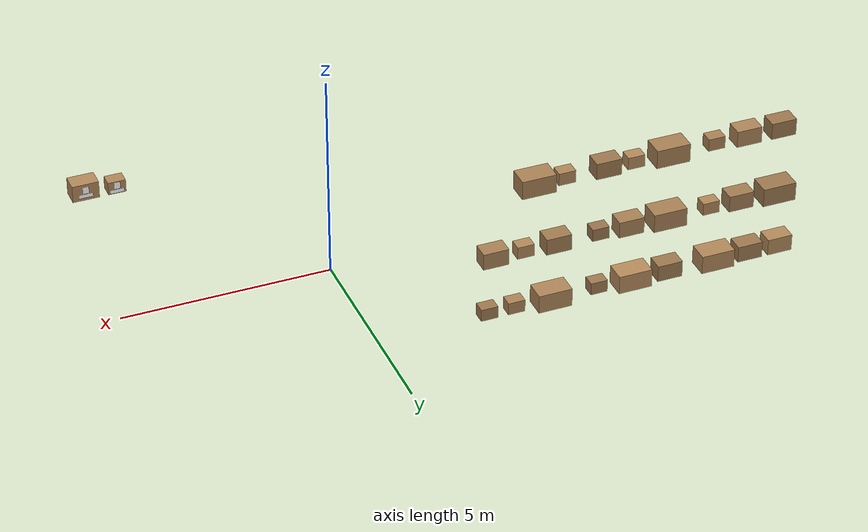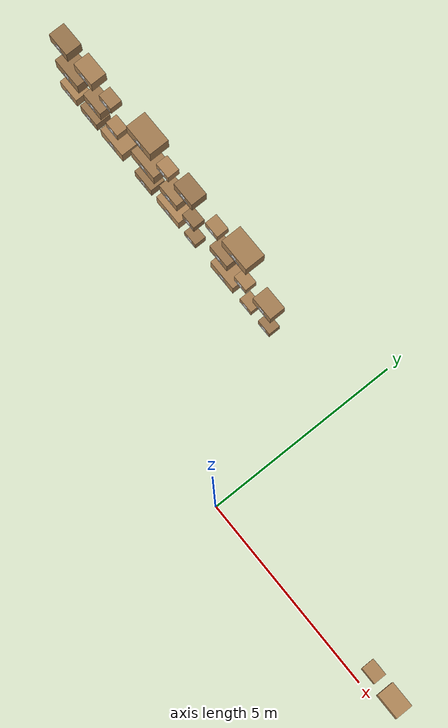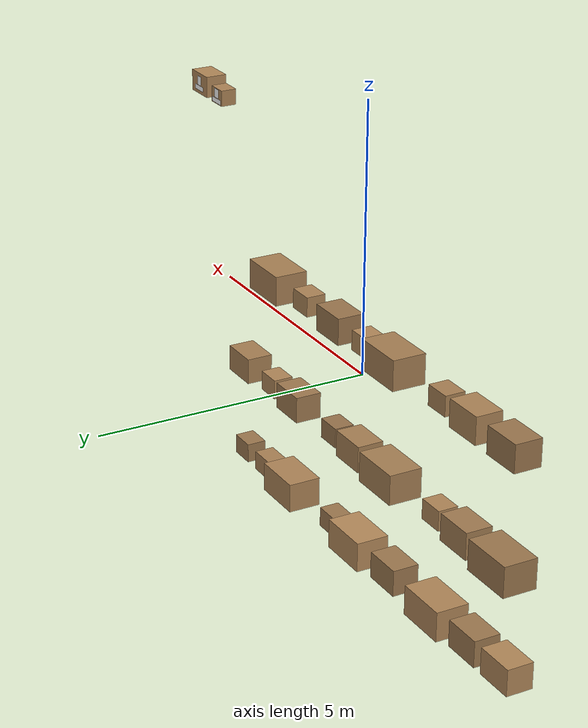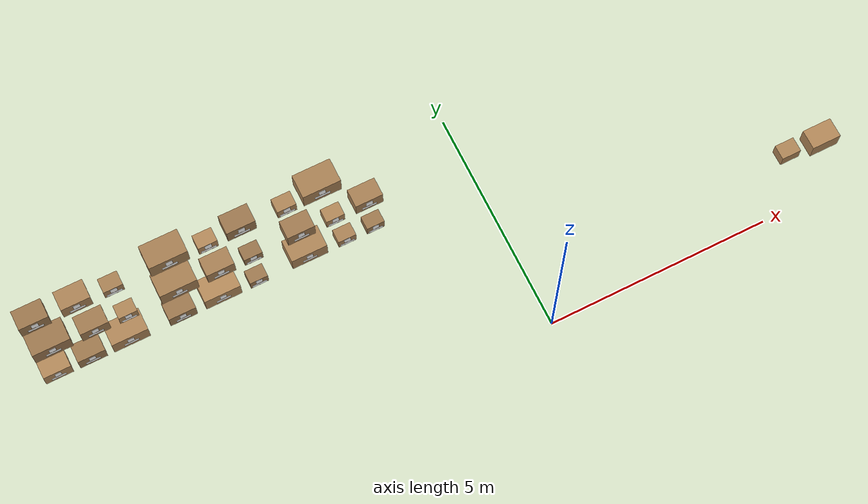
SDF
<sdf version="1.9">
 <world name="warehouse">
  <model name="inventory">
   <static>true</static>
   <link name="box_C_06_3_1">
    <visual name="body">
     <pose>4.95 0.13 3.7 0 0 0</pose>
     <geometry><box><size>0.4 0.3 0.3</size></box></geometry>
     <material>
      <ambient>0.342983 0.262281 0.171492 1</ambient>
      <diffuse>0.685967 0.524563 0.342983 1</diffuse>
      <specular>0.05 0.05 0.05 1</specular>
      <pbr><metal><metalness>0.0</metalness><roughness>0.9</roughness></metal></pbr>
     </material>
    </visual>
    <collision name="body_c">
     <pose>4.95 0.13 3.7 0 0 0</pose>
     <geometry><box><size>0.4 0.3 0.3</size></box></geometry>
    </collision>
    <visual name="label">
     <pose>4.95 0.284 3.75 1.5708 0 3.14159</pose>
     <geometry>
      <mesh><uri>model://warehouse_assets/meshes/label_quad.obj</uri><scale>0.14 0.17 1</scale></mesh>
     </geometry>
     <material>
      <ambient>1 1 1 1</ambient>
      <diffuse>1 1 1 1</diffuse>
      <specular>0 0 0 1</specular>
      <pbr>
       <metal>
        <albedo_map>model://warehouse_assets/materials/textures/box_C0631.png</albedo_map>
        <metalness>0.0</metalness>
        <roughness>1.0</roughness>
       </metal>
      </pbr>
     </material>
    </visual>
    <visual name="placard">
     <pose>4.95 0.284 3.61 1.5708 0 3.14159</pose>
     <geometry>
      <mesh><uri>model://warehouse_assets/meshes/label_quad.obj</uri><scale>0.32 0.09 1</scale></mesh>
     </geometry>
     <material>
      <ambient>1 1 1 1</ambient>
      <diffuse>1 1 1 1</diffuse>
      <specular>0 0 0 1</specular>
      <pbr>
       <metal>
        <albedo_map>model://warehouse_assets/materials/textures/placard_C0631.png</albedo_map>
        <metalness>0.0</metalness>
        <roughness>1.0</roughness>
       </metal>
      </pbr>
     </material>
    </visual>
   </link>
   <link name="box_C_06_3_2">
    <visual name="body">
     <pose>5.65 0.08 3.75 0 0 0</pose>
     <geometry><box><size>0.6 0.4 0.4</size></box></geometry>
     <material>
      <ambient>0.35077 0.268236 0.175385 1</ambient>
      <diffuse>0.701541 0.536472 0.35077 1</diffuse>
      <specular>0.05 0.05 0.05 1</specular>
      <pbr><metal><metalness>0.0</metalness><roughness>0.9</roughness></metal></pbr>
     </material>
    </visual>
    <collision name="body_c">
     <pose>5.65 0.08 3.75 0 0 0</pose>
     <geometry><box><size>0.6 0.4 0.4</size></box></geometry>
    </collision>
    <visual name="label">
     <pose>5.65 0.284 3.8 1.5708 0 3.14159</pose>
     <geometry>
      <mesh><uri>model://warehouse_assets/meshes/label_quad.obj</uri><scale>0.14 0.17 1</scale></mesh>
     </geometry>
     <material>
      <ambient>1 1 1 1</ambient>
      <diffuse>1 1 1 1</diffuse>
      <specular>0 0 0 1</specular>
      <pbr>
       <metal>
        <albedo_map>model://warehouse_assets/materials/textures/box_C0632.png</albedo_map>
        <metalness>0.0</metalness>
        <roughness>1.0</roughness>
       </metal>
      </pbr>
     </material>
    </visual>
    <visual name="placard">
     <pose>5.65 0.284 3.66 1.5708 0 3.14159</pose>
     <geometry>
      <mesh><uri>model://warehouse_assets/meshes/label_quad.obj</uri><scale>0.32 0.09 1</scale></mesh>
     </geometry>
     <material>
      <ambient>1 1 1 1</ambient>
      <diffuse>1 1 1 1</diffuse>
      <specular>0 0 0 1</specular>
      <pbr>
       <metal>
        <albedo_map>model://warehouse_assets/materials/textures/placard_C0632.png</albedo_map>
        <metalness>0.0</metalness>
        <roughness>1.0</roughness>
       </metal>
      </pbr>
     </material>
    </visual>
   </link>
   <link name="box_D_01_1_0">
    <visual name="body">
     <pose>-9.5 3.52 0.6 0 0 0</pose>
     <geometry><box><size>0.6 0.4 0.4</size></box></geometry>
     <material>
      <ambient>0.351907 0.269105 0.175953 1</ambient>
      <diffuse>0.703814 0.538211 0.351907 1</diffuse>
      <specular>0.05 0.05 0.05 1</specular>
      <pbr><metal><metalness>0.0</metalness><roughness>0.9</roughness></metal></pbr>
     </material>
    </visual>
    <collision name="body_c">
     <pose>-9.5 3.52 0.6 0 0 0</pose>
     <geometry><box><size>0.6 0.4 0.4</size></box></geometry>
    </collision>
    <visual name="label">
     <pose>-9.5 3.316 0.65 1.5708 0 0</pose>
     <geometry>
      <mesh><uri>model://warehouse_assets/meshes/label_quad.obj</uri><scale>0.14 0.17 1</scale></mesh>
     </geometry>
     <material>
      <ambient>1 1 1 1</ambient>
      <diffuse>1 1 1 1</diffuse>
      <specular>0 0 0 1</specular>
      <pbr>
       <metal>
        <albedo_map>model://warehouse_assets/materials/textures/box_D0110.png</albedo_map>
        <metalness>0.0</metalness>
        <roughness>1.0</roughness>
       </metal>
      </pbr>
     </material>
    </visual>
    <visual name="placard">
     <pose>-9.5 3.316 0.51 1.5708 0 0</pose>
     <geometry>
      <mesh><uri>model://warehouse_assets/meshes/label_quad.obj</uri><scale>0.32 0.09 1</scale></mesh>
     </geometry>
     <material>
      <ambient>1 1 1 1</ambient>
      <diffuse>1 1 1 1</diffuse>
      <specular>0 0 0 1</specular>
      <pbr>
       <metal>
        <albedo_map>model://warehouse_assets/materials/textures/placard_D0110.png</albedo_map>
        <metalness>0.0</metalness>
        <roughness>1.0</roughness>
       </metal>
      </pbr>
     </material>
    </visual>
   </link>
   <link name="box_D_01_1_1">
    <visual name="body">
     <pose>-8.75 3.52 0.6 0 0 0</pose>
     <geometry><box><size>0.6 0.4 0.4</size></box></geometry>
     <material>
      <ambient>0.309917 0.236995 0.154959 1</ambient>
      <diffuse>0.619834 0.473991 0.309917 1</diffuse>
      <specular>0.05 0.05 0.05 1</specular>
      <pbr><metal><metalness>0.0</metalness><roughness>0.9</roughness></metal></pbr>
     </material>
    </visual>
    <collision name="body_c">
     <pose>-8.75 3.52 0.6 0 0 0</pose>
     <geometry><box><size>0.6 0.4 0.4</size></box></geometry>
    </collision>
    <visual name="label">
     <pose>-8.75 3.316 0.65 1.5708 0 0</pose>
     <geometry>
      <mesh><uri>model://warehouse_assets/meshes/label_quad.obj</uri><scale>0.14 0.17 1</scale></mesh>
     </geometry>
     <material>
      <ambient>1 1 1 1</ambient>
      <diffuse>1 1 1 1</diffuse>
      <specular>0 0 0 1</specular>
      <pbr>
       <metal>
        <albedo_map>model://warehouse_assets/materials/textures/box_D0111.png</albedo_map>
        <metalness>0.0</metalness>
        <roughness>1.0</roughness>
       </metal>
      </pbr>
     </material>
    </visual>
    <visual name="placard">
     <pose>-8.75 3.316 0.51 1.5708 0 0</pose>
     <geometry>
      <mesh><uri>model://warehouse_assets/meshes/label_quad.obj</uri><scale>0.32 0.09 1</scale></mesh>
     </geometry>
     <material>
      <ambient>1 1 1 1</ambient>
      <diffuse>1 1 1 1</diffuse>
      <specular>0 0 0 1</specular>
      <pbr>
       <metal>
        <albedo_map>model://warehouse_assets/materials/textures/placard_D0111.png</albedo_map>
        <metalness>0.0</metalness>
        <roughness>1.0</roughness>
       </metal>
      </pbr>
     </material>
    </visual>
   </link>
   <link name="box_D_01_1_2">
    <visual name="body">
     <pose>-7.9 3.57 0.625 0 0 0</pose>
     <geometry><box><size>0.8 0.5 0.45</size></box></geometry>
     <material>
      <ambient>0.346962 0.265324 0.173481 1</ambient>
      <diffuse>0.693923 0.530647 0.346962 1</diffuse>
      <specular>0.05 0.05 0.05 1</specular>
      <pbr><metal><metalness>0.0</metalness><roughness>0.9</roughness></metal></pbr>
     </material>
    </visual>
    <collision name="body_c">
     <pose>-7.9 3.57 0.625 0 0 0</pose>
     <geometry><box><size>0.8 0.5 0.45</size></box></geometry>
    </collision>
    <visual name="label">
     <pose>-7.9 3.316 0.675 1.5708 0 0</pose>
     <geometry>
      <mesh><uri>model://warehouse_assets/meshes/label_quad.obj</uri><scale>0.14 0.17 1</scale></mesh>
     </geometry>
     <material>
      <ambient>1 1 1 1</ambient>
      <diffuse>1 1 1 1</diffuse>
      <specular>0 0 0 1</specular>
      <pbr>
       <metal>
        <albedo_map>model://warehouse_assets/materials/textures/box_D0112.png</albedo_map>
        <metalness>0.0</metalness>
        <roughness>1.0</roughness>
       </metal>
      </pbr>
     </material>
    </visual>
    <visual name="placard">
     <pose>-7.9 3.316 0.535 1.5708 0 0</pose>
     <geometry>
      <mesh><uri>model://warehouse_assets/meshes/label_quad.obj</uri><scale>0.32 0.09 1</scale></mesh>
     </geometry>
     <material>
      <ambient>1 1 1 1</ambient>
      <diffuse>1 1 1 1</diffuse>
      <specular>0 0 0 1</specular>
      <pbr>
       <metal>
        <albedo_map>model://warehouse_assets/materials/textures/placard_D0112.png</albedo_map>
        <metalness>0.0</metalness>
        <roughness>1.0</roughness>
       </metal>
      </pbr>
     </material>
    </visual>
   </link>
   <link name="box_D_01_2_0">
    <visual name="body">
     <pose>-9.35 3.57 2.075 0 0 0</pose>
     <geometry><box><size>0.8 0.5 0.45</size></box></geometry>
     <material>
      <ambient>0.307798 0.235375 0.153899 1</ambient>
      <diffuse>0.615597 0.470751 0.307798 1</diffuse>
      <specular>0.05 0.05 0.05 1</specular>
      <pbr><metal><metalness>0.0</metalness><roughness>0.9</roughness></metal></pbr>
     </material>
    </visual>
    <collision name="body_c">
     <pose>-9.35 3.57 2.075 0 0 0</pose>
     <geometry><box><size>0.8 0.5 0.45</size></box></geometry>
    </collision>
    <visual name="label">
     <pose>-9.35 3.316 2.125 1.5708 0 0</pose>
     <geometry>
      <mesh><uri>model://warehouse_assets/meshes/label_quad.obj</uri><scale>0.14 0.17 1</scale></mesh>
     </geometry>
     <material>
      <ambient>1 1 1 1</ambient>
      <diffuse>1 1 1 1</diffuse>
      <specular>0 0 0 1</specular>
      <pbr>
       <metal>
        <albedo_map>model://warehouse_assets/materials/textures/box_D0120.png</albedo_map>
        <metalness>0.0</metalness>
        <roughness>1.0</roughness>
       </metal>
      </pbr>
     </material>
    </visual>
    <visual name="placard">
     <pose>-9.35 3.316 1.985 1.5708 0 0</pose>
     <geometry>
      <mesh><uri>model://warehouse_assets/meshes/label_quad.obj</uri><scale>0.32 0.09 1</scale></mesh>
     </geometry>
     <material>
      <ambient>1 1 1 1</ambient>
      <diffuse>1 1 1 1</diffuse>
      <specular>0 0 0 1</specular>
      <pbr>
       <metal>
        <albedo_map>model://warehouse_assets/materials/textures/placard_D0120.png</albedo_map>
        <metalness>0.0</metalness>
        <roughness>1.0</roughness>
       </metal>
      </pbr>
     </material>
    </visual>
   </link>
   <link name="box_D_01_2_1">
    <visual name="body">
     <pose>-8.45 3.52 2.05 0 0 0</pose>
     <geometry><box><size>0.6 0.4 0.4</size></box></geometry>
     <material>
      <ambient>0.318267 0.24338 0.159133 1</ambient>
      <diffuse>0.636533 0.486761 0.318267 1</diffuse>
      <specular>0.05 0.05 0.05 1</specular>
      <pbr><metal><metalness>0.0</metalness><roughness>0.9</roughness></metal></pbr>
     </material>
    </visual>
    <collision name="body_c">
     <pose>-8.45 3.52 2.05 0 0 0</pose>
     <geometry><box><size>0.6 0.4 0.4</size></box></geometry>
    </collision>
    <visual name="label">
     <pose>-8.45 3.316 2.1 1.5708 0 0</pose>
     <geometry>
      <mesh><uri>model://warehouse_assets/meshes/label_quad.obj</uri><scale>0.14 0.17 1</scale></mesh>
     </geometry>
     <material>
      <ambient>1 1 1 1</ambient>
      <diffuse>1 1 1 1</diffuse>
      <specular>0 0 0 1</specular>
      <pbr>
       <metal>
        <albedo_map>model://warehouse_assets/materials/textures/box_D0121.png</albedo_map>
        <metalness>0.0</metalness>
        <roughness>1.0</roughness>
       </metal>
      </pbr>
     </material>
    </visual>
    <visual name="placard">
     <pose>-8.45 3.316 1.96 1.5708 0 0</pose>
     <geometry>
      <mesh><uri>model://warehouse_assets/meshes/label_quad.obj</uri><scale>0.32 0.09 1</scale></mesh>
     </geometry>
     <material>
      <ambient>1 1 1 1</ambient>
      <diffuse>1 1 1 1</diffuse>
      <specular>0 0 0 1</specular>
      <pbr>
       <metal>
        <albedo_map>model://warehouse_assets/materials/textures/placard_D0121.png</albedo_map>
        <metalness>0.0</metalness>
        <roughness>1.0</roughness>
       </metal>
      </pbr>
     </material>
    </visual>
   </link>
   <link name="box_D_01_2_2">
    <visual name="body">
     <pose>-7.75 3.47 2 0 0 0</pose>
     <geometry><box><size>0.4 0.3 0.3</size></box></geometry>
     <material>
      <ambient>0.345606 0.264287 0.172803 1</ambient>
      <diffuse>0.691212 0.528574 0.345606 1</diffuse>
      <specular>0.05 0.05 0.05 1</specular>
      <pbr><metal><metalness>0.0</metalness><roughness>0.9</roughness></metal></pbr>
     </material>
    </visual>
    <collision name="body_c">
     <pose>-7.75 3.47 2 0 0 0</pose>
     <geometry><box><size>0.4 0.3 0.3</size></box></geometry>
    </collision>
    <visual name="label">
     <pose>-7.75 3.316 2.05 1.5708 0 0</pose>
     <geometry>
      <mesh><uri>model://warehouse_assets/meshes/label_quad.obj</uri><scale>0.14 0.17 1</scale></mesh>
     </geometry>
     <material>
      <ambient>1 1 1 1</ambient>
      <diffuse>1 1 1 1</diffuse>
      <specular>0 0 0 1</specular>
      <pbr>
       <metal>
        <albedo_map>model://warehouse_assets/materials/textures/box_D0122.png</albedo_map>
        <metalness>0.0</metalness>
        <roughness>1.0</roughness>
       </metal>
      </pbr>
     </material>
    </visual>
    <visual name="placard">
     <pose>-7.75 3.316 1.91 1.5708 0 0</pose>
     <geometry>
      <mesh><uri>model://warehouse_assets/meshes/label_quad.obj</uri><scale>0.32 0.09 1</scale></mesh>
     </geometry>
     <material>
      <ambient>1 1 1 1</ambient>
      <diffuse>1 1 1 1</diffuse>
      <specular>0 0 0 1</specular>
      <pbr>
       <metal>
        <albedo_map>model://warehouse_assets/materials/textures/placard_D0122.png</albedo_map>
        <metalness>0.0</metalness>
        <roughness>1.0</roughness>
       </metal>
      </pbr>
     </material>
    </visual>
   </link>
   <link name="box_D_01_3_0">
    <visual name="body">
     <pose>-9.4 3.52 3.75 0 0 0</pose>
     <geometry><box><size>0.6 0.4 0.4</size></box></geometry>
     <material>
      <ambient>0.305015 0.233247 0.152508 1</ambient>
      <diffuse>0.61003 0.466494 0.305015 1</diffuse>
      <specular>0.05 0.05 0.05 1</specular>
      <pbr><metal><metalness>0.0</metalness><roughness>0.9</roughness></metal></pbr>
     </material>
    </visual>
    <collision name="body_c">
     <pose>-9.4 3.52 3.75 0 0 0</pose>
     <geometry><box><size>0.6 0.4 0.4</size></box></geometry>
    </collision>
    <visual name="label">
     <pose>-9.4 3.316 3.8 1.5708 0 0</pose>
     <geometry>
      <mesh><uri>model://warehouse_assets/meshes/label_quad.obj</uri><scale>0.14 0.17 1</scale></mesh>
     </geometry>
     <material>
      <ambient>1 1 1 1</ambient>
      <diffuse>1 1 1 1</diffuse>
      <specular>0 0 0 1</specular>
      <pbr>
       <metal>
        <albedo_map>model://warehouse_assets/materials/textures/box_D0130.png</albedo_map>
        <metalness>0.0</metalness>
        <roughness>1.0</roughness>
       </metal>
      </pbr>
     </material>
    </visual>
    <visual name="placard">
     <pose>-9.4 3.316 3.66 1.5708 0 0</pose>
     <geometry>
      <mesh><uri>model://warehouse_assets/meshes/label_quad.obj</uri><scale>0.32 0.09 1</scale></mesh>
     </geometry>
     <material>
      <ambient>1 1 1 1</ambient>
      <diffuse>1 1 1 1</diffuse>
      <specular>0 0 0 1</specular>
      <pbr>
       <metal>
        <albedo_map>model://warehouse_assets/materials/textures/placard_D0130.png</albedo_map>
        <metalness>0.0</metalness>
        <roughness>1.0</roughness>
       </metal>
      </pbr>
     </material>
    </visual>
   </link>
   <link name="box_D_01_3_1">
    <visual name="body">
     <pose>-8.55 3.52 3.75 0 0 0</pose>
     <geometry><box><size>0.6 0.4 0.4</size></box></geometry>
     <material>
      <ambient>0.33869 0.258999 0.169345 1</ambient>
      <diffuse>0.677381 0.517997 0.33869 1</diffuse>
      <specular>0.05 0.05 0.05 1</specular>
      <pbr><metal><metalness>0.0</metalness><roughness>0.9</roughness></metal></pbr>
     </material>
    </visual>
    <collision name="body_c">
     <pose>-8.55 3.52 3.75 0 0 0</pose>
     <geometry><box><size>0.6 0.4 0.4</size></box></geometry>
    </collision>
    <visual name="label">
     <pose>-8.55 3.316 3.8 1.5708 0 0</pose>
     <geometry>
      <mesh><uri>model://warehouse_assets/meshes/label_quad.obj</uri><scale>0.14 0.17 1</scale></mesh>
     </geometry>
     <material>
      <ambient>1 1 1 1</ambient>
      <diffuse>1 1 1 1</diffuse>
      <specular>0 0 0 1</specular>
      <pbr>
       <metal>
        <albedo_map>model://warehouse_assets/materials/textures/box_D0131.png</albedo_map>
        <metalness>0.0</metalness>
        <roughness>1.0</roughness>
       </metal>
      </pbr>
     </material>
    </visual>
    <visual name="placard">
     <pose>-8.55 3.316 3.66 1.5708 0 0</pose>
     <geometry>
      <mesh><uri>model://warehouse_assets/meshes/label_quad.obj</uri><scale>0.32 0.09 1</scale></mesh>
     </geometry>
     <material>
      <ambient>1 1 1 1</ambient>
      <diffuse>1 1 1 1</diffuse>
      <specular>0 0 0 1</specular>
      <pbr>
       <metal>
        <albedo_map>model://warehouse_assets/materials/textures/placard_D0131.png</albedo_map>
        <metalness>0.0</metalness>
        <roughness>1.0</roughness>
       </metal>
      </pbr>
     </material>
    </visual>
   </link>
   <link name="box_D_01_3_2">
    <visual name="body">
     <pose>-7.8 3.47 3.7 0 0 0</pose>
     <geometry><box><size>0.4 0.3 0.3</size></box></geometry>
     <material>
      <ambient>0.331069 0.253171 0.165535 1</ambient>
      <diffuse>0.662138 0.506341 0.331069 1</diffuse>
      <specular>0.05 0.05 0.05 1</specular>
      <pbr><metal><metalness>0.0</metalness><roughness>0.9</roughness></metal></pbr>
     </material>
    </visual>
    <collision name="body_c">
     <pose>-7.8 3.47 3.7 0 0 0</pose>
     <geometry><box><size>0.4 0.3 0.3</size></box></geometry>
    </collision>
    <visual name="label">
     <pose>-7.8 3.316 3.75 1.5708 0 0</pose>
     <geometry>
      <mesh><uri>model://warehouse_assets/meshes/label_quad.obj</uri><scale>0.14 0.17 1</scale></mesh>
     </geometry>
     <material>
      <ambient>1 1 1 1</ambient>
      <diffuse>1 1 1 1</diffuse>
      <specular>0 0 0 1</specular>
      <pbr>
       <metal>
        <albedo_map>model://warehouse_assets/materials/textures/box_D0132.png</albedo_map>
        <metalness>0.0</metalness>
        <roughness>1.0</roughness>
       </metal>
      </pbr>
     </material>
    </visual>
    <visual name="placard">
     <pose>-7.8 3.316 3.61 1.5708 0 0</pose>
     <geometry>
      <mesh><uri>model://warehouse_assets/meshes/label_quad.obj</uri><scale>0.32 0.09 1</scale></mesh>
     </geometry>
     <material>
      <ambient>1 1 1 1</ambient>
      <diffuse>1 1 1 1</diffuse>
      <specular>0 0 0 1</specular>
      <pbr>
       <metal>
        <albedo_map>model://warehouse_assets/materials/textures/placard_D0132.png</albedo_map>
        <metalness>0.0</metalness>
        <roughness>1.0</roughness>
       </metal>
      </pbr>
     </material>
    </visual>
   </link>
   <link name="box_D_02_1_0">
    <visual name="body">
     <pose>-6.75 3.52 0.6 0 0 0</pose>
     <geometry><box><size>0.6 0.4 0.4</size></box></geometry>
     <material>
      <ambient>0.309236 0.236475 0.154618 1</ambient>
      <diffuse>0.618472 0.472949 0.309236 1</diffuse>
      <specular>0.05 0.05 0.05 1</specular>
      <pbr><metal><metalness>0.0</metalness><roughness>0.9</roughness></metal></pbr>
     </material>
    </visual>
    <collision name="body_c">
     <pose>-6.75 3.52 0.6 0 0 0</pose>
     <geometry><box><size>0.6 0.4 0.4</size></box></geometry>
    </collision>
    <visual name="label">
     <pose>-6.75 3.316 0.65 1.5708 0 0</pose>
     <geometry>
      <mesh><uri>model://warehouse_assets/meshes/label_quad.obj</uri><scale>0.14 0.17 1</scale></mesh>
     </geometry>
     <material>
      <ambient>1 1 1 1</ambient>
      <diffuse>1 1 1 1</diffuse>
      <specular>0 0 0 1</specular>
      <pbr>
       <metal>
        <albedo_map>model://warehouse_assets/materials/textures/box_D0210.png</albedo_map>
        <metalness>0.0</metalness>
        <roughness>1.0</roughness>
       </metal>
      </pbr>
     </material>
    </visual>
    <visual name="placard">
     <pose>-6.75 3.316 0.51 1.5708 0 0</pose>
     <geometry>
      <mesh><uri>model://warehouse_assets/meshes/label_quad.obj</uri><scale>0.32 0.09 1</scale></mesh>
     </geometry>
     <material>
      <ambient>1 1 1 1</ambient>
      <diffuse>1 1 1 1</diffuse>
      <specular>0 0 0 1</specular>
      <pbr>
       <metal>
        <albedo_map>model://warehouse_assets/materials/textures/placard_D0210.png</albedo_map>
        <metalness>0.0</metalness>
        <roughness>1.0</roughness>
       </metal>
      </pbr>
     </material>
    </visual>
   </link>
   <link name="box_D_02_1_1">
    <visual name="body">
     <pose>-5.85 3.57 0.625 0 0 0</pose>
     <geometry><box><size>0.8 0.5 0.45</size></box></geometry>
     <material>
      <ambient>0.359107 0.274611 0.179554 1</ambient>
      <diffuse>0.718214 0.549223 0.359107 1</diffuse>
      <specular>0.05 0.05 0.05 1</specular>
      <pbr><metal><metalness>0.0</metalness><roughness>0.9</roughness></metal></pbr>
     </material>
    </visual>
    <collision name="body_c">
     <pose>-5.85 3.57 0.625 0 0 0</pose>
     <geometry><box><size>0.8 0.5 0.45</size></box></geometry>
    </collision>
    <visual name="label">
     <pose>-5.85 3.316 0.675 1.5708 0 0</pose>
     <geometry>
      <mesh><uri>model://warehouse_assets/meshes/label_quad.obj</uri><scale>0.14 0.17 1</scale></mesh>
     </geometry>
     <material>
      <ambient>1 1 1 1</ambient>
      <diffuse>1 1 1 1</diffuse>
      <specular>0 0 0 1</specular>
      <pbr>
       <metal>
        <albedo_map>model://warehouse_assets/materials/textures/box_D0211.png</albedo_map>
        <metalness>0.0</metalness>
        <roughness>1.0</roughness>
       </metal>
      </pbr>
     </material>
    </visual>
    <visual name="placard">
     <pose>-5.85 3.316 0.535 1.5708 0 0</pose>
     <geometry>
      <mesh><uri>model://warehouse_assets/meshes/label_quad.obj</uri><scale>0.32 0.09 1</scale></mesh>
     </geometry>
     <material>
      <ambient>1 1 1 1</ambient>
      <diffuse>1 1 1 1</diffuse>
      <specular>0 0 0 1</specular>
      <pbr>
       <metal>
        <albedo_map>model://warehouse_assets/materials/textures/placard_D0211.png</albedo_map>
        <metalness>0.0</metalness>
        <roughness>1.0</roughness>
       </metal>
      </pbr>
     </material>
    </visual>
   </link>
   <link name="box_D_02_1_2">
    <visual name="body">
     <pose>-5.05 3.47 0.55 0 0 0</pose>
     <geometry><box><size>0.4 0.3 0.3</size></box></geometry>
     <material>
      <ambient>0.311225 0.237995 0.155612 1</ambient>
      <diffuse>0.62245 0.475991 0.311225 1</diffuse>
      <specular>0.05 0.05 0.05 1</specular>
      <pbr><metal><metalness>0.0</metalness><roughness>0.9</roughness></metal></pbr>
     </material>
    </visual>
    <collision name="body_c">
     <pose>-5.05 3.47 0.55 0 0 0</pose>
     <geometry><box><size>0.4 0.3 0.3</size></box></geometry>
    </collision>
    <visual name="label">
     <pose>-5.05 3.316 0.6 1.5708 0 0</pose>
     <geometry>
      <mesh><uri>model://warehouse_assets/meshes/label_quad.obj</uri><scale>0.14 0.17 1</scale></mesh>
     </geometry>
     <material>
      <ambient>1 1 1 1</ambient>
      <diffuse>1 1 1 1</diffuse>
      <specular>0 0 0 1</specular>
      <pbr>
       <metal>
        <albedo_map>model://warehouse_assets/materials/textures/box_D0212.png</albedo_map>
        <metalness>0.0</metalness>
        <roughness>1.0</roughness>
       </metal>
      </pbr>
     </material>
    </visual>
    <visual name="placard">
     <pose>-5.05 3.316 0.46 1.5708 0 0</pose>
     <geometry>
      <mesh><uri>model://warehouse_assets/meshes/label_quad.obj</uri><scale>0.32 0.09 1</scale></mesh>
     </geometry>
     <material>
      <ambient>1 1 1 1</ambient>
      <diffuse>1 1 1 1</diffuse>
      <specular>0 0 0 1</specular>
      <pbr>
       <metal>
        <albedo_map>model://warehouse_assets/materials/textures/placard_D0212.png</albedo_map>
        <metalness>0.0</metalness>
        <roughness>1.0</roughness>
       </metal>
      </pbr>
     </material>
    </visual>
   </link>
   <link name="box_D_02_2_0">
    <visual name="body">
     <pose>-6.65 3.57 2.075 0 0 0</pose>
     <geometry><box><size>0.8 0.5 0.45</size></box></geometry>
     <material>
      <ambient>0.328219 0.250991 0.164109 1</ambient>
      <diffuse>0.656437 0.501981 0.328219 1</diffuse>
      <specular>0.05 0.05 0.05 1</specular>
      <pbr><metal><metalness>0.0</metalness><roughness>0.9</roughness></metal></pbr>
     </material>
    </visual>
    <collision name="body_c">
     <pose>-6.65 3.57 2.075 0 0 0</pose>
     <geometry><box><size>0.8 0.5 0.45</size></box></geometry>
    </collision>
    <visual name="label">
     <pose>-6.65 3.316 2.125 1.5708 0 0</pose>
     <geometry>
      <mesh><uri>model://warehouse_assets/meshes/label_quad.obj</uri><scale>0.14 0.17 1</scale></mesh>
     </geometry>
     <material>
      <ambient>1 1 1 1</ambient>
      <diffuse>1 1 1 1</diffuse>
      <specular>0 0 0 1</specular>
      <pbr>
       <metal>
        <albedo_map>model://warehouse_assets/materials/textures/box_D0220.png</albedo_map>
        <metalness>0.0</metalness>
        <roughness>1.0</roughness>
       </metal>
      </pbr>
     </material>
    </visual>
    <visual name="placard">
     <pose>-6.65 3.316 1.985 1.5708 0 0</pose>
     <geometry>
      <mesh><uri>model://warehouse_assets/meshes/label_quad.obj</uri><scale>0.32 0.09 1</scale></mesh>
     </geometry>
     <material>
      <ambient>1 1 1 1</ambient>
      <diffuse>1 1 1 1</diffuse>
      <specular>0 0 0 1</specular>
      <pbr>
       <metal>
        <albedo_map>model://warehouse_assets/materials/textures/placard_D0220.png</albedo_map>
        <metalness>0.0</metalness>
        <roughness>1.0</roughness>
       </metal>
      </pbr>
     </material>
    </visual>
   </link>
   <link name="box_D_02_2_1">
    <visual name="body">
     <pose>-5.75 3.52 2.05 0 0 0</pose>
     <geometry><box><size>0.6 0.4 0.4</size></box></geometry>
     <material>
      <ambient>0.329363 0.251865 0.164681 1</ambient>
      <diffuse>0.658725 0.503731 0.329363 1</diffuse>
      <specular>0.05 0.05 0.05 1</specular>
      <pbr><metal><metalness>0.0</metalness><roughness>0.9</roughness></metal></pbr>
     </material>
    </visual>
    <collision name="body_c">
     <pose>-5.75 3.52 2.05 0 0 0</pose>
     <geometry><box><size>0.6 0.4 0.4</size></box></geometry>
    </collision>
    <visual name="label">
     <pose>-5.75 3.316 2.1 1.5708 0 0</pose>
     <geometry>
      <mesh><uri>model://warehouse_assets/meshes/label_quad.obj</uri><scale>0.14 0.17 1</scale></mesh>
     </geometry>
     <material>
      <ambient>1 1 1 1</ambient>
      <diffuse>1 1 1 1</diffuse>
      <specular>0 0 0 1</specular>
      <pbr>
       <metal>
        <albedo_map>model://warehouse_assets/materials/textures/box_D0221.png</albedo_map>
        <metalness>0.0</metalness>
        <roughness>1.0</roughness>
       </metal>
      </pbr>
     </material>
    </visual>
    <visual name="placard">
     <pose>-5.75 3.316 1.96 1.5708 0 0</pose>
     <geometry>
      <mesh><uri>model://warehouse_assets/meshes/label_quad.obj</uri><scale>0.32 0.09 1</scale></mesh>
     </geometry>
     <material>
      <ambient>1 1 1 1</ambient>
      <diffuse>1 1 1 1</diffuse>
      <specular>0 0 0 1</specular>
      <pbr>
       <metal>
        <albedo_map>model://warehouse_assets/materials/textures/placard_D0221.png</albedo_map>
        <metalness>0.0</metalness>
        <roughness>1.0</roughness>
       </metal>
      </pbr>
     </material>
    </visual>
   </link>
   <link name="box_D_02_2_2">
    <visual name="body">
     <pose>-5.05 3.47 2 0 0 0</pose>
     <geometry><box><size>0.4 0.3 0.3</size></box></geometry>
     <material>
      <ambient>0.299521 0.229045 0.149761 1</ambient>
      <diffuse>0.599042 0.458091 0.299521 1</diffuse>
      <specular>0.05 0.05 0.05 1</specular>
      <pbr><metal><metalness>0.0</metalness><roughness>0.9</roughness></metal></pbr>
     </material>
    </visual>
    <collision name="body_c">
     <pose>-5.05 3.47 2 0 0 0</pose>
     <geometry><box><size>0.4 0.3 0.3</size></box></geometry>
    </collision>
    <visual name="label">
     <pose>-5.05 3.316 2.05 1.5708 0 0</pose>
     <geometry>
      <mesh><uri>model://warehouse_assets/meshes/label_quad.obj</uri><scale>0.14 0.17 1</scale></mesh>
     </geometry>
     <material>
      <ambient>1 1 1 1</ambient>
      <diffuse>1 1 1 1</diffuse>
      <specular>0 0 0 1</specular>
      <pbr>
       <metal>
        <albedo_map>model://warehouse_assets/materials/textures/box_D0222.png</albedo_map>
        <metalness>0.0</metalness>
        <roughness>1.0</roughness>
       </metal>
      </pbr>
     </material>
    </visual>
    <visual name="placard">
     <pose>-5.05 3.316 1.91 1.5708 0 0</pose>
     <geometry>
      <mesh><uri>model://warehouse_assets/meshes/label_quad.obj</uri><scale>0.32 0.09 1</scale></mesh>
     </geometry>
     <material>
      <ambient>1 1 1 1</ambient>
      <diffuse>1 1 1 1</diffuse>
      <specular>0 0 0 1</specular>
      <pbr>
       <metal>
        <albedo_map>model://warehouse_assets/materials/textures/placard_D0222.png</albedo_map>
        <metalness>0.0</metalness>
        <roughness>1.0</roughness>
       </metal>
      </pbr>
     </material>
    </visual>
   </link>
   <link name="box_D_02_3_0">
    <visual name="body">
     <pose>-6.65 3.57 3.775 0 0 0</pose>
     <geometry><box><size>0.8 0.5 0.45</size></box></geometry>
     <material>
      <ambient>0.327168 0.250187 0.163584 1</ambient>
      <diffuse>0.654335 0.500374 0.327168 1</diffuse>
      <specular>0.05 0.05 0.05 1</specular>
      <pbr><metal><metalness>0.0</metalness><roughness>0.9</roughness></metal></pbr>
     </material>
    </visual>
    <collision name="body_c">
     <pose>-6.65 3.57 3.775 0 0 0</pose>
     <geometry><box><size>0.8 0.5 0.45</size></box></geometry>
    </collision>
    <visual name="label">
     <pose>-6.65 3.316 3.825 1.5708 0 0</pose>
     <geometry>
      <mesh><uri>model://warehouse_assets/meshes/label_quad.obj</uri><scale>0.14 0.17 1</scale></mesh>
     </geometry>
     <material>
      <ambient>1 1 1 1</ambient>
      <diffuse>1 1 1 1</diffuse>
      <specular>0 0 0 1</specular>
      <pbr>
       <metal>
        <albedo_map>model://warehouse_assets/materials/textures/box_D0230.png</albedo_map>
        <metalness>0.0</metalness>
        <roughness>1.0</roughness>
       </metal>
      </pbr>
     </material>
    </visual>
    <visual name="placard">
     <pose>-6.65 3.316 3.685 1.5708 0 0</pose>
     <geometry>
      <mesh><uri>model://warehouse_assets/meshes/label_quad.obj</uri><scale>0.32 0.09 1</scale></mesh>
     </geometry>
     <material>
      <ambient>1 1 1 1</ambient>
      <diffuse>1 1 1 1</diffuse>
      <specular>0 0 0 1</specular>
      <pbr>
       <metal>
        <albedo_map>model://warehouse_assets/materials/textures/placard_D0230.png</albedo_map>
        <metalness>0.0</metalness>
        <roughness>1.0</roughness>
       </metal>
      </pbr>
     </material>
    </visual>
   </link>
   <link name="box_D_02_3_1">
    <visual name="body">
     <pose>-5.85 3.47 3.7 0 0 0</pose>
     <geometry><box><size>0.4 0.3 0.3</size></box></geometry>
     <material>
      <ambient>0.353067 0.269993 0.176534 1</ambient>
      <diffuse>0.706134 0.539985 0.353067 1</diffuse>
      <specular>0.05 0.05 0.05 1</specular>
      <pbr><metal><metalness>0.0</metalness><roughness>0.9</roughness></metal></pbr>
     </material>
    </visual>
    <collision name="body_c">
     <pose>-5.85 3.47 3.7 0 0 0</pose>
     <geometry><box><size>0.4 0.3 0.3</size></box></geometry>
    </collision>
    <visual name="label">
     <pose>-5.85 3.316 3.75 1.5708 0 0</pose>
     <geometry>
      <mesh><uri>model://warehouse_assets/meshes/label_quad.obj</uri><scale>0.14 0.17 1</scale></mesh>
     </geometry>
     <material>
      <ambient>1 1 1 1</ambient>
      <diffuse>1 1 1 1</diffuse>
      <specular>0 0 0 1</specular>
      <pbr>
       <metal>
        <albedo_map>model://warehouse_assets/materials/textures/box_D0231.png</albedo_map>
        <metalness>0.0</metalness>
        <roughness>1.0</roughness>
       </metal>
      </pbr>
     </material>
    </visual>
    <visual name="placard">
     <pose>-5.85 3.316 3.61 1.5708 0 0</pose>
     <geometry>
      <mesh><uri>model://warehouse_assets/meshes/label_quad.obj</uri><scale>0.32 0.09 1</scale></mesh>
     </geometry>
     <material>
      <ambient>1 1 1 1</ambient>
      <diffuse>1 1 1 1</diffuse>
      <specular>0 0 0 1</specular>
      <pbr>
       <metal>
        <albedo_map>model://warehouse_assets/materials/textures/placard_D0231.png</albedo_map>
        <metalness>0.0</metalness>
        <roughness>1.0</roughness>
       </metal>
      </pbr>
     </material>
    </visual>
   </link>
   <link name="box_D_02_3_2">
    <visual name="body">
     <pose>-5.15 3.52 3.75 0 0 0</pose>
     <geometry><box><size>0.6 0.4 0.4</size></box></geometry>
     <material>
      <ambient>0.305916 0.233936 0.152958 1</ambient>
      <diffuse>0.611832 0.467871 0.305916 1</diffuse>
      <specular>0.05 0.05 0.05 1</specular>
      <pbr><metal><metalness>0.0</metalness><roughness>0.9</roughness></metal></pbr>
     </material>
    </visual>
    <collision name="body_c">
     <pose>-5.15 3.52 3.75 0 0 0</pose>
     <geometry><box><size>0.6 0.4 0.4</size></box></geometry>
    </collision>
    <visual name="label">
     <pose>-5.15 3.316 3.8 1.5708 0 0</pose>
     <geometry>
      <mesh><uri>model://warehouse_assets/meshes/label_quad.obj</uri><scale>0.14 0.17 1</scale></mesh>
     </geometry>
     <material>
      <ambient>1 1 1 1</ambient>
      <diffuse>1 1 1 1</diffuse>
      <specular>0 0 0 1</specular>
      <pbr>
       <metal>
        <albedo_map>model://warehouse_assets/materials/textures/box_D0232.png</albedo_map>
        <metalness>0.0</metalness>
        <roughness>1.0</roughness>
       </metal>
      </pbr>
     </material>
    </visual>
    <visual name="placard">
     <pose>-5.15 3.316 3.66 1.5708 0 0</pose>
     <geometry>
      <mesh><uri>model://warehouse_assets/meshes/label_quad.obj</uri><scale>0.32 0.09 1</scale></mesh>
     </geometry>
     <material>
      <ambient>1 1 1 1</ambient>
      <diffuse>1 1 1 1</diffuse>
      <specular>0 0 0 1</specular>
      <pbr>
       <metal>
        <albedo_map>model://warehouse_assets/materials/textures/placard_D0232.png</albedo_map>
        <metalness>0.0</metalness>
        <roughness>1.0</roughness>
       </metal>
      </pbr>
     </material>
    </visual>
   </link>
   <link name="box_D_03_1_0">
    <visual name="body">
     <pose>-3.9 3.57 0.625 0 0 0</pose>
     <geometry><box><size>0.8 0.5 0.45</size></box></geometry>
     <material>
      <ambient>0.343472 0.262655 0.171736 1</ambient>
      <diffuse>0.686945 0.525311 0.343472 1</diffuse>
      <specular>0.05 0.05 0.05 1</specular>
      <pbr><metal><metalness>0.0</metalness><roughness>0.9</roughness></metal></pbr>
     </material>
    </visual>
    <collision name="body_c">
     <pose>-3.9 3.57 0.625 0 0 0</pose>
     <geometry><box><size>0.8 0.5 0.45</size></box></geometry>
    </collision>
    <visual name="label">
     <pose>-3.9 3.316 0.675 1.5708 0 0</pose>
     <geometry>
      <mesh><uri>model://warehouse_assets/meshes/label_quad.obj</uri><scale>0.14 0.17 1</scale></mesh>
     </geometry>
     <material>
      <ambient>1 1 1 1</ambient>
      <diffuse>1 1 1 1</diffuse>
      <specular>0 0 0 1</specular>
      <pbr>
       <metal>
        <albedo_map>model://warehouse_assets/materials/textures/box_D0310.png</albedo_map>
        <metalness>0.0</metalness>
        <roughness>1.0</roughness>
       </metal>
      </pbr>
     </material>
    </visual>
    <visual name="placard">
     <pose>-3.9 3.316 0.535 1.5708 0 0</pose>
     <geometry>
      <mesh><uri>model://warehouse_assets/meshes/label_quad.obj</uri><scale>0.32 0.09 1</scale></mesh>
     </geometry>
     <material>
      <ambient>1 1 1 1</ambient>
      <diffuse>1 1 1 1</diffuse>
      <specular>0 0 0 1</specular>
      <pbr>
       <metal>
        <albedo_map>model://warehouse_assets/materials/textures/placard_D0310.png</albedo_map>
        <metalness>0.0</metalness>
        <roughness>1.0</roughness>
       </metal>
      </pbr>
     </material>
    </visual>
   </link>
   <link name="box_D_03_1_1">
    <visual name="body">
     <pose>-3.05 3.47 0.55 0 0 0</pose>
     <geometry><box><size>0.4 0.3 0.3</size></box></geometry>
     <material>
      <ambient>0.336158 0.257062 0.168079 1</ambient>
      <diffuse>0.672316 0.514124 0.336158 1</diffuse>
      <specular>0.05 0.05 0.05 1</specular>
      <pbr><metal><metalness>0.0</metalness><roughness>0.9</roughness></metal></pbr>
     </material>
    </visual>
    <collision name="body_c">
     <pose>-3.05 3.47 0.55 0 0 0</pose>
     <geometry><box><size>0.4 0.3 0.3</size></box></geometry>
    </collision>
    <visual name="label">
     <pose>-3.05 3.316 0.6 1.5708 0 0</pose>
     <geometry>
      <mesh><uri>model://warehouse_assets/meshes/label_quad.obj</uri><scale>0.14 0.17 1</scale></mesh>
     </geometry>
     <material>
      <ambient>1 1 1 1</ambient>
      <diffuse>1 1 1 1</diffuse>
      <specular>0 0 0 1</specular>
      <pbr>
       <metal>
        <albedo_map>model://warehouse_assets/materials/textures/box_D0311.png</albedo_map>
        <metalness>0.0</metalness>
        <roughness>1.0</roughness>
       </metal>
      </pbr>
     </material>
    </visual>
    <visual name="placard">
     <pose>-3.05 3.316 0.46 1.5708 0 0</pose>
     <geometry>
      <mesh><uri>model://warehouse_assets/meshes/label_quad.obj</uri><scale>0.32 0.09 1</scale></mesh>
     </geometry>
     <material>
      <ambient>1 1 1 1</ambient>
      <diffuse>1 1 1 1</diffuse>
      <specular>0 0 0 1</specular>
      <pbr>
       <metal>
        <albedo_map>model://warehouse_assets/materials/textures/placard_D0311.png</albedo_map>
        <metalness>0.0</metalness>
        <roughness>1.0</roughness>
       </metal>
      </pbr>
     </material>
    </visual>
   </link>
   <link name="box_D_03_1_2">
    <visual name="body">
     <pose>-2.4 3.47 0.55 0 0 0</pose>
     <geometry><box><size>0.4 0.3 0.3</size></box></geometry>
     <material>
      <ambient>0.310037 0.237087 0.155018 1</ambient>
      <diffuse>0.620074 0.474174 0.310037 1</diffuse>
      <specular>0.05 0.05 0.05 1</specular>
      <pbr><metal><metalness>0.0</metalness><roughness>0.9</roughness></metal></pbr>
     </material>
    </visual>
    <collision name="body_c">
     <pose>-2.4 3.47 0.55 0 0 0</pose>
     <geometry><box><size>0.4 0.3 0.3</size></box></geometry>
    </collision>
    <visual name="label">
     <pose>-2.4 3.316 0.6 1.5708 0 0</pose>
     <geometry>
      <mesh><uri>model://warehouse_assets/meshes/label_quad.obj</uri><scale>0.14 0.17 1</scale></mesh>
     </geometry>
     <material>
      <ambient>1 1 1 1</ambient>
      <diffuse>1 1 1 1</diffuse>
      <specular>0 0 0 1</specular>
      <pbr>
       <metal>
        <albedo_map>model://warehouse_assets/materials/textures/box_D0312.png</albedo_map>
        <metalness>0.0</metalness>
        <roughness>1.0</roughness>
       </metal>
      </pbr>
     </material>
    </visual>
    <visual name="placard">
     <pose>-2.4 3.316 0.46 1.5708 0 0</pose>
     <geometry>
      <mesh><uri>model://warehouse_assets/meshes/label_quad.obj</uri><scale>0.32 0.09 1</scale></mesh>
     </geometry>
     <material>
      <ambient>1 1 1 1</ambient>
      <diffuse>1 1 1 1</diffuse>
      <specular>0 0 0 1</specular>
      <pbr>
       <metal>
        <albedo_map>model://warehouse_assets/materials/textures/placard_D0312.png</albedo_map>
        <metalness>0.0</metalness>
        <roughness>1.0</roughness>
       </metal>
      </pbr>
     </material>
    </visual>
   </link>
   <link name="box_D_03_2_0">
    <visual name="body">
     <pose>-4 3.52 2.05 0 0 0</pose>
     <geometry><box><size>0.6 0.4 0.4</size></box></geometry>
     <material>
      <ambient>0.315048 0.240919 0.157524 1</ambient>
      <diffuse>0.630096 0.481838 0.315048 1</diffuse>
      <specular>0.05 0.05 0.05 1</specular>
      <pbr><metal><metalness>0.0</metalness><roughness>0.9</roughness></metal></pbr>
     </material>
    </visual>
    <collision name="body_c">
     <pose>-4 3.52 2.05 0 0 0</pose>
     <geometry><box><size>0.6 0.4 0.4</size></box></geometry>
    </collision>
    <visual name="label">
     <pose>-4 3.316 2.1 1.5708 0 0</pose>
     <geometry>
      <mesh><uri>model://warehouse_assets/meshes/label_quad.obj</uri><scale>0.14 0.17 1</scale></mesh>
     </geometry>
     <material>
      <ambient>1 1 1 1</ambient>
      <diffuse>1 1 1 1</diffuse>
      <specular>0 0 0 1</specular>
      <pbr>
       <metal>
        <albedo_map>model://warehouse_assets/materials/textures/box_D0320.png</albedo_map>
        <metalness>0.0</metalness>
        <roughness>1.0</roughness>
       </metal>
      </pbr>
     </material>
    </visual>
    <visual name="placard">
     <pose>-4 3.316 1.96 1.5708 0 0</pose>
     <geometry>
      <mesh><uri>model://warehouse_assets/meshes/label_quad.obj</uri><scale>0.32 0.09 1</scale></mesh>
     </geometry>
     <material>
      <ambient>1 1 1 1</ambient>
      <diffuse>1 1 1 1</diffuse>
      <specular>0 0 0 1</specular>
      <pbr>
       <metal>
        <albedo_map>model://warehouse_assets/materials/textures/placard_D0320.png</albedo_map>
        <metalness>0.0</metalness>
        <roughness>1.0</roughness>
       </metal>
      </pbr>
     </material>
    </visual>
   </link>
   <link name="box_D_03_2_1">
    <visual name="body">
     <pose>-3.25 3.47 2 0 0 0</pose>
     <geometry><box><size>0.4 0.3 0.3</size></box></geometry>
     <material>
      <ambient>0.348668 0.266628 0.174334 1</ambient>
      <diffuse>0.697336 0.533257 0.348668 1</diffuse>
      <specular>0.05 0.05 0.05 1</specular>
      <pbr><metal><metalness>0.0</metalness><roughness>0.9</roughness></metal></pbr>
     </material>
    </visual>
    <collision name="body_c">
     <pose>-3.25 3.47 2 0 0 0</pose>
     <geometry><box><size>0.4 0.3 0.3</size></box></geometry>
    </collision>
    <visual name="label">
     <pose>-3.25 3.316 2.05 1.5708 0 0</pose>
     <geometry>
      <mesh><uri>model://warehouse_assets/meshes/label_quad.obj</uri><scale>0.14 0.17 1</scale></mesh>
     </geometry>
     <material>
      <ambient>1 1 1 1</ambient>
      <diffuse>1 1 1 1</diffuse>
      <specular>0 0 0 1</specular>
      <pbr>
       <metal>
        <albedo_map>model://warehouse_assets/materials/textures/box_D0321.png</albedo_map>
        <metalness>0.0</metalness>
        <roughness>1.0</roughness>
       </metal>
      </pbr>
     </material>
    </visual>
    <visual name="placard">
     <pose>-3.25 3.316 1.91 1.5708 0 0</pose>
     <geometry>
      <mesh><uri>model://warehouse_assets/meshes/label_quad.obj</uri><scale>0.32 0.09 1</scale></mesh>
     </geometry>
     <material>
      <ambient>1 1 1 1</ambient>
      <diffuse>1 1 1 1</diffuse>
      <specular>0 0 0 1</specular>
      <pbr>
       <metal>
        <albedo_map>model://warehouse_assets/materials/textures/placard_D0321.png</albedo_map>
        <metalness>0.0</metalness>
        <roughness>1.0</roughness>
       </metal>
      </pbr>
     </material>
    </visual>
   </link>
   <link name="box_D_03_2_2">
    <visual name="body">
     <pose>-2.5 3.52 2.05 0 0 0</pose>
     <geometry><box><size>0.6 0.4 0.4</size></box></geometry>
     <material>
      <ambient>0.329479 0.251954 0.164739 1</ambient>
      <diffuse>0.658958 0.503909 0.329479 1</diffuse>
      <specular>0.05 0.05 0.05 1</specular>
      <pbr><metal><metalness>0.0</metalness><roughness>0.9</roughness></metal></pbr>
     </material>
    </visual>
    <collision name="body_c">
     <pose>-2.5 3.52 2.05 0 0 0</pose>
     <geometry><box><size>0.6 0.4 0.4</size></box></geometry>
    </collision>
    <visual name="label">
     <pose>-2.5 3.316 2.1 1.5708 0 0</pose>
     <geometry>
      <mesh><uri>model://warehouse_assets/meshes/label_quad.obj</uri><scale>0.14 0.17 1</scale></mesh>
     </geometry>
     <material>
      <ambient>1 1 1 1</ambient>
      <diffuse>1 1 1 1</diffuse>
      <specular>0 0 0 1</specular>
      <pbr>
       <metal>
        <albedo_map>model://warehouse_assets/materials/textures/box_D0322.png</albedo_map>
        <metalness>0.0</metalness>
        <roughness>1.0</roughness>
       </metal>
      </pbr>
     </material>
    </visual>
    <visual name="placard">
     <pose>-2.5 3.316 1.96 1.5708 0 0</pose>
     <geometry>
      <mesh><uri>model://warehouse_assets/meshes/label_quad.obj</uri><scale>0.32 0.09 1</scale></mesh>
     </geometry>
     <material>
      <ambient>1 1 1 1</ambient>
      <diffuse>1 1 1 1</diffuse>
      <specular>0 0 0 1</specular>
      <pbr>
       <metal>
        <albedo_map>model://warehouse_assets/materials/textures/placard_D0322.png</albedo_map>
        <metalness>0.0</metalness>
        <roughness>1.0</roughness>
       </metal>
      </pbr>
     </material>
    </visual>
   </link>
   <link name="box_D_03_3_0">
    <visual name="body">
     <pose>-4.2 3.47 3.7 0 0 0</pose>
     <geometry><box><size>0.4 0.3 0.3</size></box></geometry>
     <material>
      <ambient>0.342661 0.262035 0.17133 1</ambient>
      <diffuse>0.685321 0.524069 0.342661 1</diffuse>
      <specular>0.05 0.05 0.05 1</specular>
      <pbr><metal><metalness>0.0</metalness><roughness>0.9</roughness></metal></pbr>
     </material>
    </visual>
    <collision name="body_c">
     <pose>-4.2 3.47 3.7 0 0 0</pose>
     <geometry><box><size>0.4 0.3 0.3</size></box></geometry>
    </collision>
    <visual name="label">
     <pose>-4.2 3.316 3.75 1.5708 0 0</pose>
     <geometry>
      <mesh><uri>model://warehouse_assets/meshes/label_quad.obj</uri><scale>0.14 0.17 1</scale></mesh>
     </geometry>
     <material>
      <ambient>1 1 1 1</ambient>
      <diffuse>1 1 1 1</diffuse>
      <specular>0 0 0 1</specular>
      <pbr>
       <metal>
        <albedo_map>model://warehouse_assets/materials/textures/box_D0330.png</albedo_map>
        <metalness>0.0</metalness>
        <roughness>1.0</roughness>
       </metal>
      </pbr>
     </material>
    </visual>
    <visual name="placard">
     <pose>-4.2 3.316 3.61 1.5708 0 0</pose>
     <geometry>
      <mesh><uri>model://warehouse_assets/meshes/label_quad.obj</uri><scale>0.32 0.09 1</scale></mesh>
     </geometry>
     <material>
      <ambient>1 1 1 1</ambient>
      <diffuse>1 1 1 1</diffuse>
      <specular>0 0 0 1</specular>
      <pbr>
       <metal>
        <albedo_map>model://warehouse_assets/materials/textures/placard_D0330.png</albedo_map>
        <metalness>0.0</metalness>
        <roughness>1.0</roughness>
       </metal>
      </pbr>
     </material>
    </visual>
   </link>
   <link name="box_D_03_3_1">
    <visual name="body">
     <pose>-3.45 3.57 3.775 0 0 0</pose>
     <geometry><box><size>0.8 0.5 0.45</size></box></geometry>
     <material>
      <ambient>0.332184 0.254023 0.166092 1</ambient>
      <diffuse>0.664369 0.508047 0.332184 1</diffuse>
      <specular>0.05 0.05 0.05 1</specular>
      <pbr><metal><metalness>0.0</metalness><roughness>0.9</roughness></metal></pbr>
     </material>
    </visual>
    <collision name="body_c">
     <pose>-3.45 3.57 3.775 0 0 0</pose>
     <geometry><box><size>0.8 0.5 0.45</size></box></geometry>
    </collision>
    <visual name="label">
     <pose>-3.45 3.316 3.825 1.5708 0 0</pose>
     <geometry>
      <mesh><uri>model://warehouse_assets/meshes/label_quad.obj</uri><scale>0.14 0.17 1</scale></mesh>
     </geometry>
     <material>
      <ambient>1 1 1 1</ambient>
      <diffuse>1 1 1 1</diffuse>
      <specular>0 0 0 1</specular>
      <pbr>
       <metal>
        <albedo_map>model://warehouse_assets/materials/textures/box_D0331.png</albedo_map>
        <metalness>0.0</metalness>
        <roughness>1.0</roughness>
       </metal>
      </pbr>
     </material>
    </visual>
    <visual name="placard">
     <pose>-3.45 3.316 3.685 1.5708 0 0</pose>
     <geometry>
      <mesh><uri>model://warehouse_assets/meshes/label_quad.obj</uri><scale>0.32 0.09 1</scale></mesh>
     </geometry>
     <material>
      <ambient>1 1 1 1</ambient>
      <diffuse>1 1 1 1</diffuse>
      <specular>0 0 0 1</specular>
      <pbr>
       <metal>
        <albedo_map>model://warehouse_assets/materials/textures/placard_D0331.png</albedo_map>
        <metalness>0.0</metalness>
        <roughness>1.0</roughness>
       </metal>
      </pbr>
     </material>
    </visual>
   </link>
  </model>
 </world>
</sdf>
